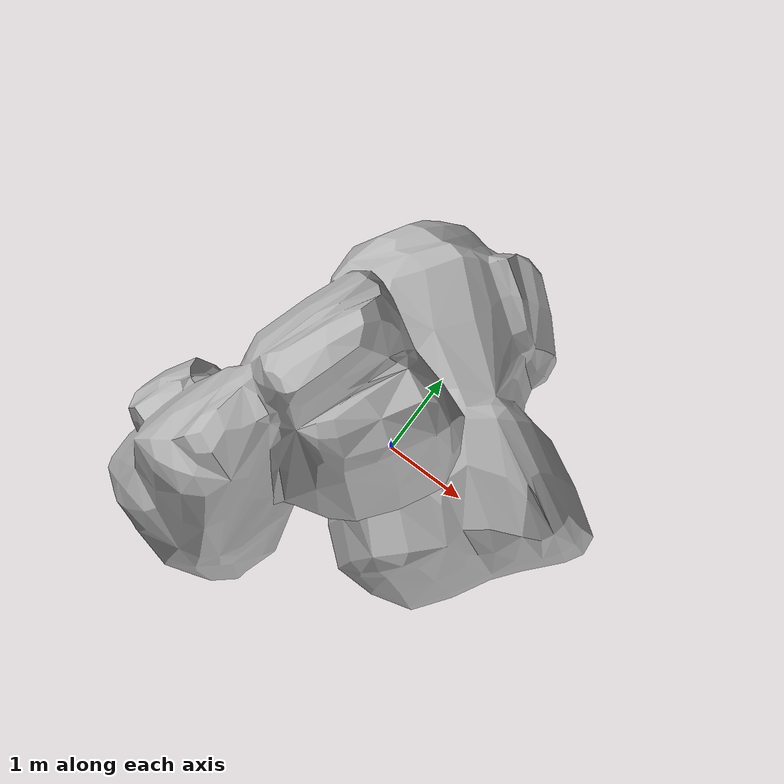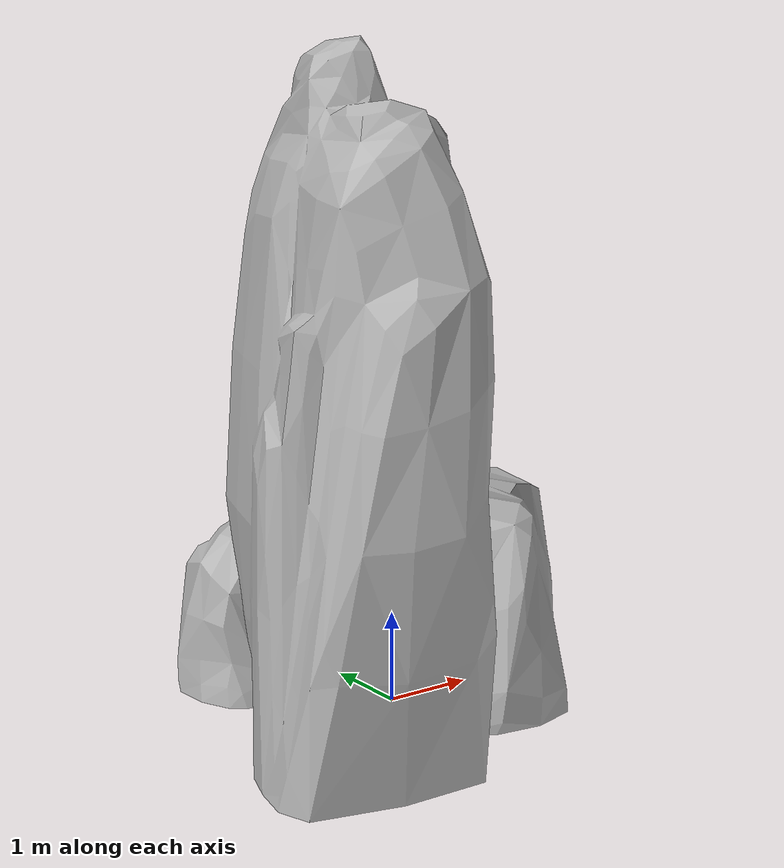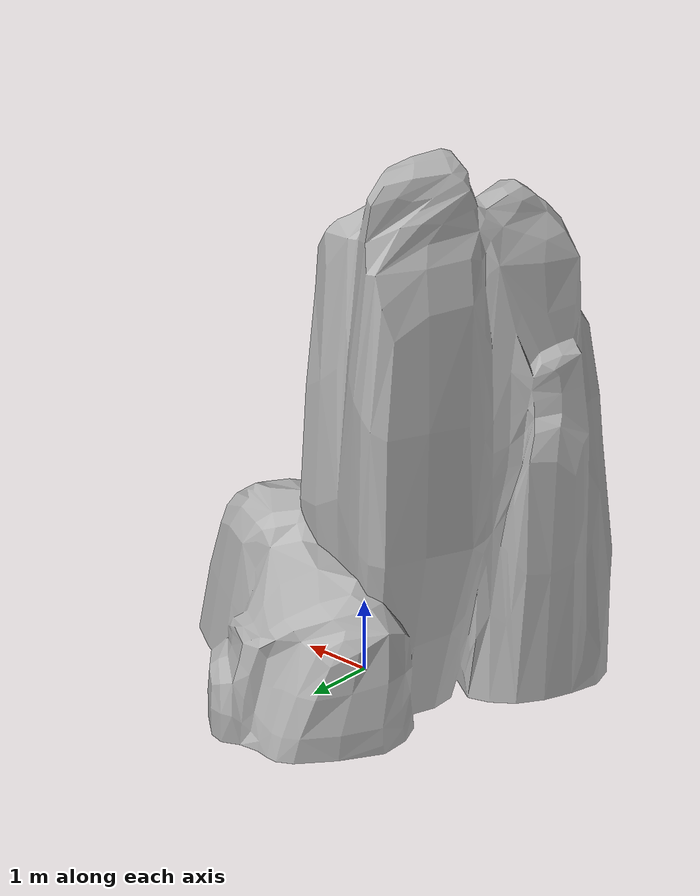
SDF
<sdf version="1.7">
  <model name="rock2">
    <static>true</static>
    <link name="rock2_link">
      <collision name="rock2_collision">
        <geometry>
          <mesh>
            <uri>model://rock2/rock2.dae</uri>
            <scale>1 1 1</scale>
          </mesh>
        </geometry>
      </collision>
      <visual name="rock2_visual">
        <geometry>
          <mesh>
            <uri>model://rock2/rock2.dae</uri>
            <scale>1 1 1</scale>
          </mesh>
        </geometry>
      </visual>
    </link>
  </model>
</sdf>
